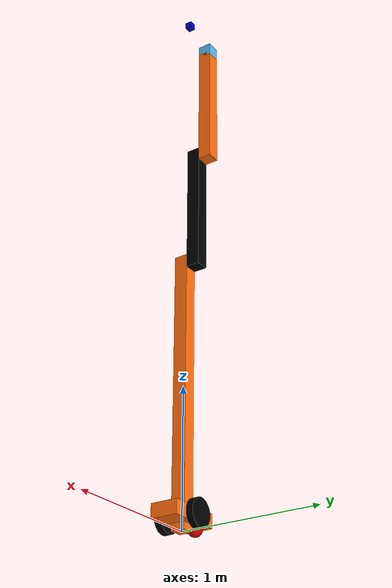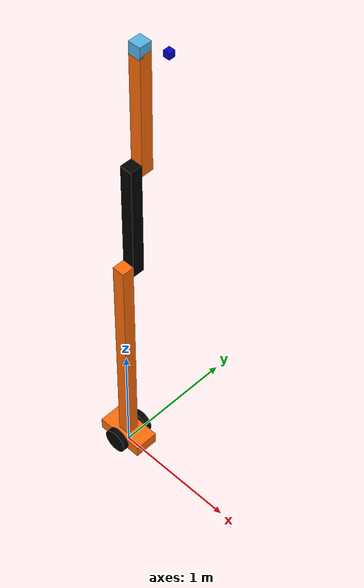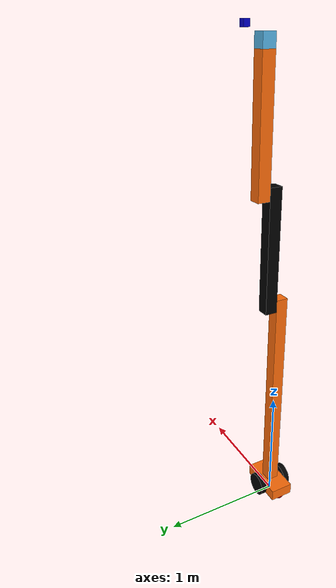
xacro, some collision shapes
<?xml version="1.0"?>
<robot name="mybot" xmlns:xacro="http://www.ros.org/wiki/xacro">

<xacro:property name="PI" value="3.1415926535897931"/>

<xacro:property name="chassisHeight" value="0.1"/>
<xacro:property name="chassisLength" value="0.4"/>
<xacro:property name="chassisWidth" value="0.2"/>
<xacro:property name="chassisMass" value="50"/>

<xacro:property name="casterRadius" value="0.05"/>
<xacro:property name="casterMass" value="5"/>

<xacro:property name="wheelWidth" value="0.05"/>
<xacro:property name="wheelRadius" value="0.1"/>
<xacro:property name="wheelPos" value="0.2"/>
<xacro:property name="wheelMass" value="5"/>

<xacro:property name="cameraSize" value="0.05"/>
<xacro:property name="cameraMass" value="0.1"/>

<xacro:include filename="$(find mybot_description)/urdf/mybot.gazebo" />
<xacro:include filename="$(find mybot_description)/urdf/materials.xacro" />
<xacro:include filename="$(find mybot_description)/urdf/macros.xacro" />

  <xacro:property name="PI" value="3.1415926535897931"/>
  <xacro:property name="mass" value="0.1" /> <!-- arbitrary value for mass -->
  <xacro:property name="width" value="0.1" /> <!-- Square dimensions (widthxwidth) of beams -->
  <xacro:property name="height1" value="2" /> <!-- Link 1 -->
  <xacro:property name="height2" value="1" /> <!-- Link 2 -->
  <xacro:property name="height3" value="1" /> <!-- Link 3 -->
  <xacro:property name="camera_link" value="0.05" /> <!-- Size of square 'camera' box -->
  <xacro:property name="axel_offset" value="0.05" /> <!-- Space btw top of beam and the each joint -->

  <link name="footprint">
   <visual>
      <origin xyz="0 0 0" rpy="0 0 0" />
      <geometry>
        <box size="0.001 0.001 0.001" />
      </geometry>
    </visual>
  </link>

<joint name="base_joint" type="fixed">
  <parent link="footprint"/>
  <child link="chassis"/>
</joint>

<link name='chassis'>
  <collision>
    <origin xyz="0 0 ${wheelRadius}" rpy="0 0 0"/>
    <geometry>
      <box size="${chassisLength} ${chassisWidth} ${chassisHeight}"/>
    </geometry>
  </collision>
  <visual>
    <origin xyz="0 0 ${wheelRadius}" rpy="0 0 0"/>
    <geometry>
      <box size="${chassisLength} ${chassisWidth} ${chassisHeight}"/>
    </geometry>
    <material name="orange"/>
  </visual>
  <inertial>
    <origin xyz="0 0 ${wheelRadius}" rpy="0 0 0"/>
    <mass value="${chassisMass}"/>
    <box_inertia m="${chassisMass}" x="${chassisLength}" y="${chassisWidth}" z="${chassisHeight}"/>
  </inertial>
</link>

<!-- add the wheels	etape1-->
<joint name="joint_wheels" type="fixed">
  <parent link="chassis"/>
  <child link="caster_wheel"/>
</joint>

<link name="caster_wheel">
  <collision>
    <origin xyz="${casterRadius-chassisLength/2} 0 ${casterRadius-chassisHeight+wheelRadius}" rpy="0 0 0"/>
    <geometry>
      <sphere radius="${casterRadius}"/>
    </geometry>
  </collision>

  <visual>
    <origin xyz="${casterRadius-chassisLength/2} 0 ${casterRadius-chassisHeight+wheelRadius}" rpy="0 0 0"/>
    <geometry>
      <sphere radius="${casterRadius}"/>
    </geometry>
    <material name="red"/>
  </visual>

  <inertial>
    <origin xyz="${casterRadius-chassisLength/2} 0 ${casterRadius-chassisHeight+wheelRadius}" rpy="0 0 0"/>
    <mass value="${casterMass}"/>
    <sphere_inertia m="${casterMass}" r="${casterRadius}"/>
  </inertial>
</link>

<wheel lr="left" tY="1"/>
<wheel lr="right" tY="-1"/>

<link name="camera">
  <collision>
    <origin xyz="${chassisLength/2} 0 ${chassisWidth - cameraSize/2}" rpy="0 0 0"/>
    <geometry>
      <box size="${cameraSize} ${cameraSize} ${cameraSize}"/>
    </geometry>
  </collision>

  <visual>
    <origin xyz="${chassisLength/2} 0 ${chassisWidth - cameraSize/2}" rpy="0 0 0"/>
    <geometry>
      <box size="${cameraSize} ${cameraSize} ${cameraSize}"/>
    </geometry>
    <material name="blue"/>
  </visual>

  <inertial>
    <mass value="${cameraMass}" />
    <origin xyz="${chassisLength/2} 0 ${chassisWidth - cameraSize/2}" rpy="0 0 0"/>
    <box_inertia m="${cameraMass}" x="${cameraSize}" y="${cameraSize}" z="${cameraSize}" />
  </inertial>
</link>

<joint name="camera_joint" type="fixed">
    <axis xyz="0 1 0" />
    <origin xyz="${camera_link} 0 ${height3 - axel_offset*2}" rpy="0 0 0"/>
   <parent link="link3"/>
  <child link="camera"/>
</joint>

<!-- ajout du bras   -->

  <!-- Used for fixing robot to Gazebo 'base_link' -->

  <joint name="fixed" type="fixed">
    <parent link="chassis"/>
    <child link="link1"/>
  </joint>

  <!-- Base Link -->
  <link name="link1">
    <collision>
      <origin xyz="0 1 ${height1/2}" rpy="0 0 0"/>
      <geometry>
	<box size="${width} ${width} ${height1}"/>
      </geometry>
    </collision>

    <visual>
      <origin xyz="0 0 ${height1/2}" rpy="0 0 0"/>
      <geometry>
	<box size="${width} ${width} ${height1}"/>
      </geometry>
      <material name="orange"/>
    </visual>

    <inertial>
      <origin xyz="0 0 ${height1/2}" rpy="0 0 0"/>
      <mass value="${mass}"/>
      <inertia
	  ixx="${mass / 12.0 * (width*width + height1*height1)}" ixy="0.0" ixz="0.0"
	  iyy="${mass / 12.0 * (height1*height1 + width*width)}" iyz="0.0"
	  izz="${mass / 12.0 * (width*width + width*width)}"/>
    </inertial>
  </link>

 <joint name="joint1" type="continuous">
    <parent link="link1"/>
    <child link="link2"/>
    <origin xyz="0 ${width} ${height1 - axel_offset}" rpy="0 0 0"/>
    <axis xyz="0 1 0"/>
    <dynamics damping="0.7"/>
  </joint>

  <!-- Middle Link -->
  <link name="link2">
    <collision>
      <origin xyz="0 0 ${height2/2 - axel_offset}" rpy="0 0 0"/>
      <geometry>
	<box size="${width} ${width} ${height2}"/>
      </geometry>
    </collision>

    <visual>
      <origin xyz="0 0 ${height2/2 - axel_offset}" rpy="0 0 0"/>
      <geometry>
	<box size="${width} ${width} ${height2}"/>
      </geometry>
      <material name="black"/>
    </visual>

    <inertial>
      <origin xyz="0 0 ${height2/2 - axel_offset}" rpy="0 0 0"/>
      <mass value="${mass}"/>
      <inertia
	  ixx="${mass / 12.0 * (width*width + height2*height2)}" ixy="0.0" ixz="0.0"
	  iyy="${mass / 12.0 * (height2*height2 + width*width)}" iyz="0.0"
	  izz="${mass / 12.0 * (width*width + width*width)}"/>
    </inertial>
  </link>

  <joint name="joint2" type="continuous">
    <parent link="link2"/>
    <child link="link3"/>
    <origin xyz="0 ${width} ${height2 - axel_offset*2}" rpy="0 0 0"/>
    <axis xyz="0 1 0"/>
    <dynamics damping="0.7"/>
  </joint>

  <!-- Top Link -->
  <link name="link3">
    <collision>
      <origin xyz="0 0 ${height3/2 - axel_offset}" rpy="0 0 0"/>
      <geometry>
	<box size="${width} ${width} ${height3}"/>
      </geometry>
    </collision>

    <visual>
      <origin xyz="0 0 ${height3/2 - axel_offset}" rpy="0 0 0"/>
      <geometry>
	<box size="${width} ${width} ${height3}"/>
      </geometry>
      <material name="orange"/>
    </visual>

    <inertial>
      <origin xyz="0 0 ${height3/2 - axel_offset}" rpy="0 0 0"/>
      <mass value="${mass}"/>
      <inertia
	  ixx="${mass / 12.0 * (width*width + height3*height3)}" ixy="0.0" ixz="0.0"
	  iyy="${mass / 12.0 * (height3*height3 + width*width)}" iyz="0.0"
	  izz="${mass / 12.0 * (width*width + width*width)}"/>
    </inertial>
  </link>

  <joint name="hokuyo_joint" type="fixed">
    <axis xyz="0 1 0" />
    <origin xyz="0 0 ${height3 - axel_offset/2}" rpy="0 0 0"/>
    <parent link="link3"/>
    <child link="hokuyo_link"/>
  </joint>

  <!-- Hokuyo Laser -->
  <link name="hokuyo_link">
    <collision>
      <origin xyz="0 0 0" rpy="0 0 0"/>
      <geometry>
	<box size="0.1 0.1 0.1"/>
      </geometry>
    </collision>

    <visual>
      <origin xyz="0 0 0" rpy="0 0 0"/>
      <geometry>
        <mesh filename="package://mybot_description/meshes/hokuyo.dae"/>
      </geometry>
    </visual>

    <inertial>
      <mass value="1e-5" />
      <origin xyz="0 0 0" rpy="0 0 0"/>
      <inertia ixx="1e-6" ixy="0" ixz="0" iyy="1e-6" iyz="0" izz="1e-6" />
    </inertial>
  </link>

  <transmission name="tran1">
    <type>transmission_interface/SimpleTransmission</type>
    <joint name="joint1">
      <hardwareInterface>EffortJointInterface</hardwareInterface>
    </joint>
    <actuator name="motor1">
      <hardwareInterface>EffortJointInterface</hardwareInterface>
      <mechanicalReduction>1</mechanicalReduction>
    </actuator>
  </transmission>

  <transmission name="tran2">
    <type>transmission_interface/SimpleTransmission</type>
    <joint name="joint2">
      <hardwareInterface>EffortJointInterface</hardwareInterface>
    </joint>
    <actuator name="motor2">
      <hardwareInterface>EffortJointInterface</hardwareInterface>
      <mechanicalReduction>1</mechanicalReduction>
    </actuator>
  </transmission>

</robot>

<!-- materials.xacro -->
<robot name="mybot" xmlns:xacro="http://www.ros.org/wiki/xacro">

<material name="black">
  <color rgba="0.0 0.0 0.0 1.0"/>
</material>

<material name="blue">
  <color rgba="0.0 0.0 0.8 1.0"/>
</material>

<material name="green">
  <color rgba="0.0 0.8 0.0 1.0"/>
</material>

<material name="grey">
  <color rgba="0.2 0.2 0.2 1.0"/>
</material>

<material name="orange">
  <color rgba="${255/255} ${108/255} ${10/255} 1.0"/>
</material>

<material name="brown">
  <color rgba="${222/255} ${207/255} ${195/255} 1.0"/>
</material>

<material name="red">
  <color rgba="0.8 0.0 0.0 1.0"/>
</material>

<material name="white">
  <color rgba="1.0 1.0 1.0 1.0"/>
</material>

</robot>

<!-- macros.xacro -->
<robot name="mybot" xmlns:xacro="http://www.ros.org/wiki/xacro">

<macro name="cylinder_inertia" params="m r h">
  <inertia  ixx="${m*(3*r*r+h*h)/12}" ixy = "0" ixz = "0"
    iyy="${m*(3*r*r+h*h)/12}" iyz = "0"
    izz="${m*r*r/2}"
  />
</macro>

<macro name="box_inertia" params="m x y z">
  <inertia  ixx="${m*(y*y+z*z)/12}" ixy = "0" ixz = "0"
    iyy="${m*(x*x+z*z)/12}" iyz = "0"
    izz="${m*(x*x+z*z)/12}"
  />
</macro>

<macro name="sphere_inertia" params="m r">
  <inertia  ixx="${2*m*r*r/5}" ixy = "0" ixz = "0"
    iyy="${2*m*r*r/5}" iyz = "0"
    izz="${2*m*r*r/5}"
  />
</macro>

<!--  roues droite et gauche-->

<macro name="wheel" params="lr tY">

<link name="${lr}_wheel">
  <collision>
    <origin xyz="0 0 0" rpy="0 ${PI/2} ${PI/2}" />
    <geometry>
      <cylinder length="${wheelWidth}" radius="${wheelRadius}"/>
    </geometry>
  </collision>

  <visual>
    <origin xyz="0 0 0" rpy="0 ${PI/2} ${PI/2}" />
    <geometry>
      <cylinder length="${wheelWidth}" radius="${wheelRadius}"/>
    </geometry>
    <material name="black"/>
  </visual>

  <inertial>
    <origin xyz="0 0 0" rpy="0 ${PI/2} ${PI/2}" />
    <mass value="${wheelMass}"/>
    <cylinder_inertia m="${wheelMass}" r="${wheelRadius}" h="${wheelWidth}"/>
  </inertial>
</link>

<gazebo reference="${lr}_wheel">
  <mu1 value="1.0"/>
  <mu2 value="1.0"/>
  <kp  value="10000000.0" />
  <kd  value="1.0" />
  <fdir1 value="1 0 0"/>
  <material>Gazebo/Black</material>
</gazebo>

<joint name="${lr}_wheel_hinge" type="continuous">
  <parent link="chassis"/>
  <child link="${lr}_wheel"/>
<origin xyz="${-wheelPos+chassisLength/2} ${tY*wheelWidth/2+tY*chassisWidth/2} ${wheelRadius}" rpy="0 0 0" />
  <axis xyz="0 1 0" rpy="0 0 0" />
  <limit effort="100" velocity="100"/>
  <joint_properties damping="0.0" friction="0.0"/>
</joint>

<transmission name="${lr}_trans">
  <type>transmission_interface/SimpleTransmission</type>
  <joint name="${lr}_wheel_hinge" >
      <hardwareInterface>hardware_interface/EffortJointInterface</hardwareInterface>
  </joint>
  <actuator name="${lr}Motor">
    <hardwareInterface>hardware_interface/EffortJointInterface</hardwareInterface>
    <mechanicalReduction>10</mechanicalReduction>
  </actuator>
</transmission>

</macro>

</robot>
